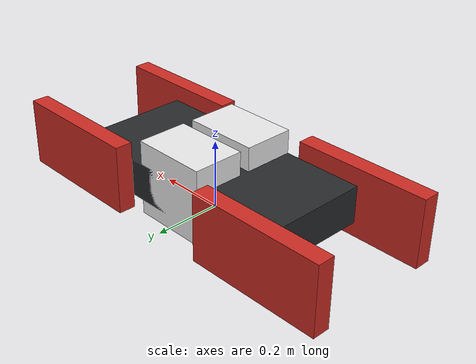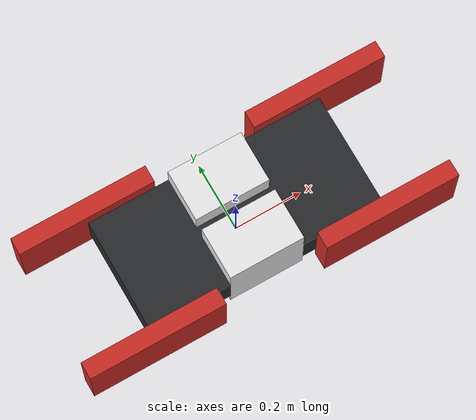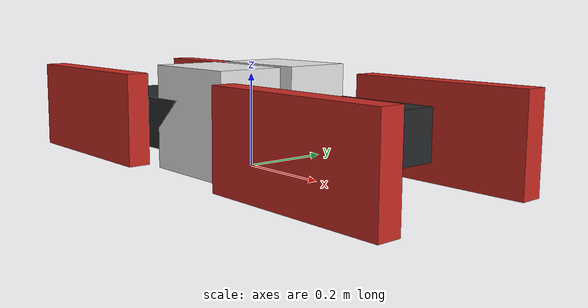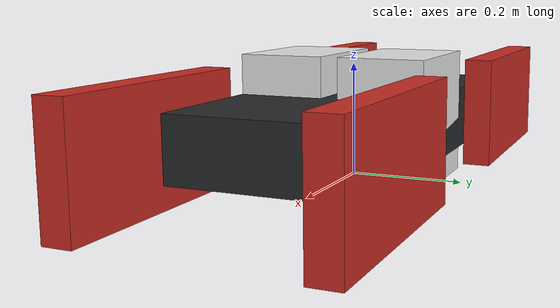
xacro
<?xml version="1.0"?>
<robot xmlns:xacro="http://www.ros.org/wiki/xacro" name="Lotti2">

<!-- included files for properties -->
    <xacro:include filename="urdf_inertial_shapes.xacro" />
    <xacro:include filename="urdf_materials.xacro"/>

<!-- include files for parts -->
    <xacro:include filename="Lotti_body.xacro"/>

<!-- include controllers -->
    <xacro:include filename="$(find lotti2_control)/ros2_control/Lotti2.ros2_control.xacro"/>
</robot>

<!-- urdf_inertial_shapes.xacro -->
<robot xmlns:xacro="http://www.ros.org/wiki/xacro" >

    <xacro:macro name="inertial_box" params="mass x y z *origin " >
        <inertial>
            <xacro:insert_block name="origin" />
            <mass value="${mass}" />
            <inertia ixx="${(1/12) * mass * (y*y+z*z)}" ixy="0.0" ixz="0.0"
                    iyy="${(1/12) * mass * (x*x+z*z)}" iyz="0.0"
                    izz="${(1/12) * mass * (x*x+z*z)}" />
        </inertial>
    </xacro:macro>
</robot>

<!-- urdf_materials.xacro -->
<robot xmlns:xacro="http://www.ros.org/wiki/xacro" >

    <material name="red">
        <color rgba="${204/255} ${44/255} ${36/255} 1" />
    </material>

    <material name="black">
        <color rgba ="${39/255} ${41/255} ${43/255} 1" />
    </material>

    <material name="orange">
        <color rgba ="${255/255} ${165/255} ${0/255} 1" />
    </material>

</robot>

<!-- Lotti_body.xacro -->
<robot xmlns:xacro="http://www.ros.org/wiki/xacro" >

<!-- Main Body -->
    <xacro:property name="body_length" value="0.7"/>
    <xacro:property name="body_width" value="0.33"/>
    <xacro:property name="body_height" value="0.15"/>
    <xacro:property name="body_mass" value="25.0"/>

    <link name="body_link">
        <visual>
            <origin rpy="0 0 0" xyz="0 0 ${(body_height/2)+0.02}"/>
            <geometry>
            <box size="${body_length} ${body_width} ${body_height-0.04}"/>
            </geometry>
            <material name="black"/>
        </visual>
        <collision>
            <origin rpy="0 0 0" xyz="0 0 ${(body_height/2)}"/>
            <geometry>
            <box size="0.1 0.1 0.1"/>
            </geometry>
        </collision>
        <innertial></innertial>
    </link>

    <!-- Chains (represented by wheels) -->
    <!-- wheel macro-->
    <xacro:property name="wheel_length" value="0.15"/>
    <xacro:property name="wheel_radius" value="${0.22/2}"/>
    <xacro:property name="wheel_mass" value="1"/>
    <xacro:property name="wheel_seperation" value="${body_width - wheel_length}"/>

    <xacro:macro name="chain_link" params="position">
        <link name="${position}_chain_link">
            <visual>
                <origin xyz="0 0 0" rpy="0 0 0"/>
                <geometry>
                    <box size="${wheel_radius*2} ${wheel_length} ${wheel_radius*2}"/>
                </geometry>
                <material name="white"/>
            </visual>
            <collision>
                <origin xyz="0 0 0" rpy="${pi/2} 0 0"/>
                <geometry>
                    <box size="${wheel_radius*2} ${wheel_length} ${wheel_radius*2}"/>
                </geometry>
            </collision>
            <xacro:inertial_box mass="${wheel_mass}" x="${wheel_radius*2}" y="${wheel_length}" z="${wheel_radius*2}">
                <origin xyz="0 0 0" rpy="0 0 0"/>
            </xacro:inertial_box>
        </link>
    </xacro:macro>

    <!-- Left Chain-->
    <joint name="left_chain_joint" type="continuous">
        <origin xyz="0 ${wheel_seperation/2} ${wheel_radius}" rpy="0 0 0"/>
        <parent link="body_link"/>
        <child link="left_chain_link"/>
        <axis xyz="0 -1 0"/>
    </joint>

    <xacro:chain_link position="left"/>

    <!-- Right Chain-->
    <joint name="right_chain_joint" type="continuous">
        <origin xyz="0 ${-wheel_seperation/2} ${wheel_radius}" rpy="0 0 0"/>
        <parent link="body_link"/>
        <child link="right_chain_link"/>
        <axis xyz="0 1 0"/>
    </joint>

    <xacro:chain_link position="right"/>

    <!-- Flippers -->
    <xacro:property name="flipper_length" value="0.4"/>
    <xacro:property name="flipper_width" value="0.05"/>
    <xacro:property name="flipper_height" value="0.2"/>
    <xacro:property name="flipper_mass" value="3.0"/>

    <!-- Flipper link macro -->
    <xacro:macro name="flipper_link" params="position">
        <link name="flipper_${position}_link">
            <visual>
                <origin xyz="${(flipper_height/2) - (flipper_length/2)} 0 0" rpy="0 0 0"/>
                <geometry>
                    <box size="${flipper_length} ${flipper_width} ${flipper_height}"/>
                </geometry>
                <material name="red"/>
            </visual>
            <collision>
                <origin xyz="${(flipper_height/2) - (flipper_length/2)} 0 0" rpy="0 0 0"/>
                <geometry>
                    <box size="${flipper_length} ${flipper_width} ${flipper_height}"/>
                </geometry>
            </collision>
            <xacro:inertial_box mass="${flipper_mass}" x="${flipper_length}" y="${flipper_width}" z="${flipper_height}">
                <origin xyz="${(flipper_height/2) - (flipper_length/2)} 0 0" rpy="0 0 0"/>
            </xacro:inertial_box>
        </link>
    </xacro:macro>

    <!-- Front Left Flipper-->
    <joint name="flipper_fr_joint" type="continuous">
        <origin xyz="${body_length/2 - flipper_height/2} ${-(body_width/2) - (flipper_width/2)} ${flipper_height/2}" rpy="0 ${pi} 0"/>
        <parent link="body_link"/>
        <child link="flipper_fr_link"/>
        <axis xyz="0 1 0"/>
    </joint>

    <xacro:flipper_link position="fr"/>

    <!-- Front Right Flipper-->
    <joint name="flipper_fl_joint" type="continuous">
        <origin xyz="${(body_length/2) - (flipper_height/2)} ${(body_width/2) + (flipper_width/2)} ${flipper_height/2}" rpy="0 ${pi} 0"/>
        <parent link="body_link"/>
        <child link="flipper_fl_link"/>
        <axis xyz="0 1 0"/>
    </joint>

    <xacro:flipper_link position="fl"/>

    <!-- Rear Left Flipper-->
    <joint name="flipper_rr_joint" type="continuous">
        <origin xyz="${-(body_length/2) + (flipper_height/2)} ${-(body_width/2) - (flipper_width/2)} ${flipper_height/2}" rpy="0 0 0"/>
        <parent link="body_link"/>
        <child link="flipper_rr_link"/>
        <axis xyz="0 -1 0"/>
    </joint>

    <xacro:flipper_link position="rr"/>

    <!-- Rear Right Flipper-->
    <joint name="flipper_rl_joint" type="continuous">
        <origin xyz="${-(body_length/2) + (flipper_height/2)} ${(body_width/2) + (flipper_width/2)} ${flipper_height/2}" rpy="0 0 0"/>
        <parent link="body_link"/>
        <child link="flipper_rl_link"/>
        <axis xyz="0 -1 0"/>
    </joint>

    <xacro:flipper_link position="rl"/>

</robot>
